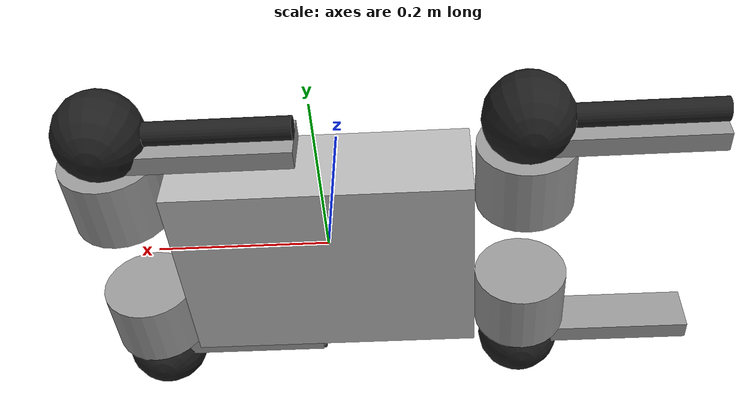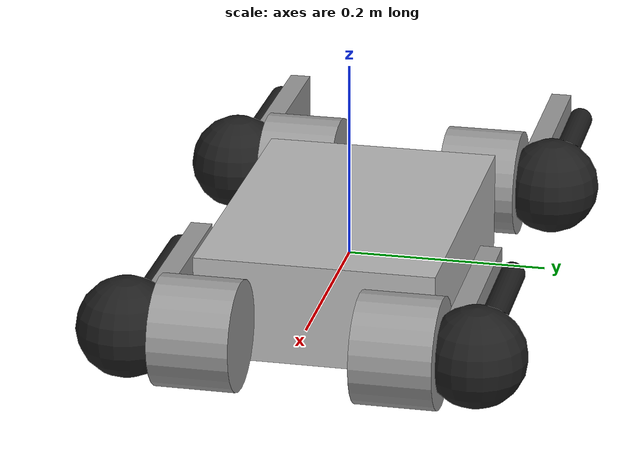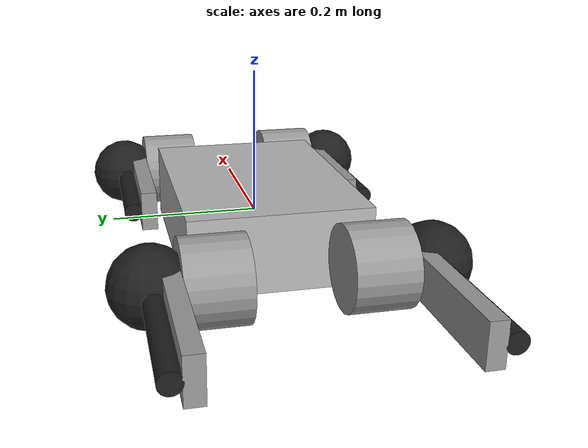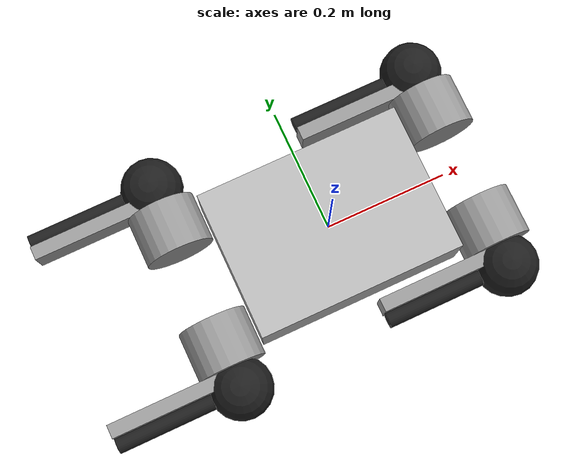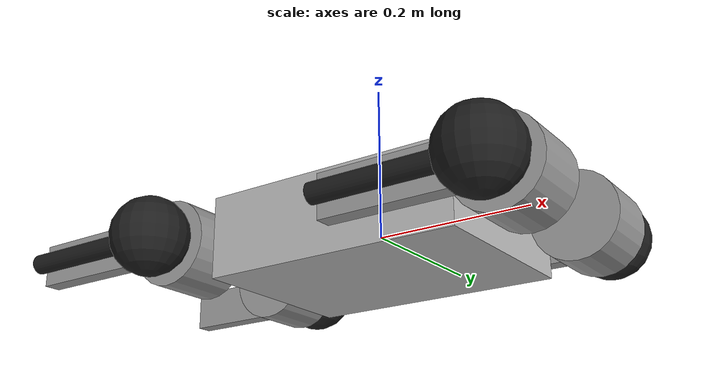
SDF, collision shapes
<sdf version='1.6'>
  <model name='spirit'>
    <link name='body'>
      <pose frame=''>0 0 0 0 -0 0</pose>
      <inertial>
        <pose frame=''>1e-06 0 -0 0 -0 0</pose>
        <mass>5.7501</mass>
        <inertia>
          <ixx>0.05</ixx>
          <ixy>0</ixy>
          <ixz>1.99997e-08</ixz>
          <iyy>0.1</iyy>
          <iyz>0</iyz>
          <izz>0.1</izz>
        </inertia>
      </inertial>
      <collision name='body_collision'>
        <pose frame=''>0 0 0 0 -0 0</pose>
        <geometry>
          <box>
            <size>0.335 0.24 0.104</size>
          </box>
        </geometry>
        <surface>
          <contact>
            <ode/>
          </contact>
          <friction>
            <ode/>
          </friction>
        </surface>
      </collision>
      <visual name='body_visual'>
        <pose frame=''>0.03 0 0 0 -0 0</pose>
        <geometry>
          <mesh>
            <scale>1 1 1</scale>
            <uri>model://spirit_description/meshes/Spirit40_Body_Mesh_transformed.stl</uri>
          </mesh>
        </geometry>
        <material>
          <script>
            <uri>__default__</uri>
            <name>__default__</name>
          </script>
        </material>
      </visual>
      <visual name='body_fixed_joint_lump__text_top_visual_1'>
        <pose frame=''>0.04 5.2e-05 -0.07 -1.57 0 0</pose>
        <geometry>
          <mesh>
            <scale>1.3 1 1.3</scale>
            <uri>model://spirit_description/meshes/Spirit40_CMU_Text_transformed.stl</uri>
          </mesh>
        </geometry>
      </visual>
      <gravity>1</gravity>
      <velocity_decay/>
      <gravity>1</gravity>
      <sensor name='imu_sensor' type='imu'>
        <always_on>1</always_on>
        <visualize>1</visualize>
        <topic>__default_topic_</topic>
        <plugin name='imu_plugin' filename='libgazebo_ros_imu_sensor.so'>
          <topicName>imu</topicName>
          <bodyName>body</bodyName>
          <updateRateHZ>500.0</updateRateHZ>
          <gaussianNoise>0.0</gaussianNoise>
          <xyzOffset>0 0 0</xyzOffset>
          <rpyOffset>0 0 0</rpyOffset>
          <frameName>body</frameName>
          <initialOrientationAsReference>1</initialOrientationAsReference>
        </plugin>
        <pose frame=''>0 0 0 0 -0 0</pose>
      </sensor>
    </link>
    <link name='hip2'>
      <pose frame=''>0.2263 -0.07 0 0 -0 0</pose>
      <inertial>
        <pose frame=''>0 0 0 0 -0 0</pose>
        <mass>0.575</mass>
        <inertia>
          <ixx>0.000669635</ixx>
          <ixy>0</ixy>
          <ixz>0</ixz>
          <iyy>0.000669635</iyy>
          <iyz>0</iyz>
          <izz>0.000869688</izz>
        </inertia>
      </inertial>
      <collision name='hip2_collision'>
        <pose frame=''>0 -0.028 0 1.5708 -0 0</pose>
        <geometry>
          <cylinder>
            <length>0.08</length>
            <radius>0.055</radius>
          </cylinder>
        </geometry>
        <surface>
          <contact>
            <ode/>
          </contact>
          <friction>
            <ode/>
          </friction>
        </surface>
      </collision>
      <visual name='hip2_visual'>
        <pose frame=''>0 0 0 -3.14159 -0 0</pose>
        <geometry>
          <mesh>
            <scale>1 1 1</scale>
            <uri>model://spirit_description/meshes/Spirit40_Hip_Module_transformed.stl</uri>
          </mesh>
        </geometry>
        <material>
          <script>
            <name>Gazebo/Gray</name>
            <uri>file://media/materials/scripts/gazebo.material</uri>
          </script>
        </material>
      </visual>
      <gravity>1</gravity>
      <velocity_decay/>
    </link>
    <joint name='10' type='revolute'>
      <child>hip2</child>
      <parent>body</parent>
      <axis>
        <xyz>1 0 0</xyz>
        <limit>
          <lower>-0.707</lower>
          <upper>0.707</upper>
          <effort>21</effort>
          <velocity>37.7</velocity>
        </limit>
        <dynamics>
          <damping>0</damping>
          <friction>0</friction>
          <spring_reference>0</spring_reference>
          <spring_stiffness>0</spring_stiffness>
        </dynamics>
        <use_parent_model_frame>0</use_parent_model_frame>
      </axis>
    </joint>
    <link name='upper2'>
      <pose frame=''>0.2263 -0.17098 0 0 -0 0</pose>
      <inertial>
        <pose frame=''>0 0 0 0 -0 0</pose>
        <mass>0.775</mass>
        <inertia>
          <ixx>5e-05</ixx>
          <ixy>0</ixy>
          <ixz>0</ixz>
          <iyy>0.001</iyy>
          <iyz>0</iyz>
          <izz>0.001</izz>
        </inertia>
      </inertial>
      <collision name='upper2_collision'>
        <pose frame=''>-0.103 0.022 0 0 -0 0</pose>
        <geometry>
          <box>
            <size>0.206 0.022 0.055</size>
          </box>
        </geometry>
        <surface>
          <contact>
            <ode/>
          </contact>
          <friction>
            <ode/>
          </friction>
        </surface>
      </collision>
      <visual name='upper2_visual'>
        <pose frame=''>0 0.02 0 -3.14159 -0 0</pose>
        <geometry>
          <mesh>
            <scale>1 1 1</scale>
            <uri>model://spirit_description/meshes/Spirit40_Upper_leg_transformed.stl</uri>
          </mesh>
        </geometry>
        <material>
          <script>
            <name>Gazebo/Gray</name>
            <uri>file://media/materials/scripts/gazebo.material</uri>
          </script>
        </material>
      </visual>
      <gravity>1</gravity>
      <velocity_decay/>
    </link>
    <joint name='4' type='revolute'>
      <child>upper2</child>
      <parent>hip2</parent>
      <axis>
        <xyz>0 -1 0</xyz>
        <limit>
          <lower>-1.57</lower>
          <upper>3.14</upper>
          <effort>21</effort>
          <velocity>37.7</velocity>
        </limit>
        <dynamics>
          <damping>0</damping>
          <friction>0</friction>
          <spring_reference>0</spring_reference>
          <spring_stiffness>0</spring_stiffness>
        </dynamics>
        <use_parent_model_frame>0</use_parent_model_frame>
      </axis>
    </joint>
    <link name='lower2'>
      <pose frame=''>0.0203 -0.17098 0 0 -0 0</pose>
      <inertial>
        <pose frame=''>0.034333 0 0 0 -0 0</pose>
        <mass>0.09</mass>
        <inertia>
          <ixx>3e-05</ixx>
          <ixy>0</ixy>
          <ixz>0</ixz>
          <iyy>0.00065545</iyy>
          <iyz>0</iyz>
          <izz>0.00065545</izz>
        </inertia>
      </inertial>
      <collision name='lower2_collision'>
        <pose frame=''>0.103 0 0 3.14159 1.57079 3.14159</pose>
        <geometry>
          <cylinder>
            <length>0.206</length>
            <radius>0.013</radius>
          </cylinder>
        </geometry>
        <surface>
          <contact>
            <ode/>
          </contact>
          <friction>
            <ode/>
          </friction>
        </surface>
      </collision>
      <collision name='lower2_fixed_joint_lump__toe2_collision_1'>
        <pose frame=''>0.206 0 0 0 -0 0</pose>
        <geometry>
          <sphere>
            <radius>0.05</radius>
          </sphere>
        </geometry>
        <surface>
          <bounce>
            <restitution_coefficient>0</restitution_coefficient>
            <threshold>1e+06</threshold>
          </bounce>
          <friction>
            <torsional>
              <coefficient>0.3</coefficient>
            </torsional>
            <ode>
              <mu>100</mu>
              <mu2>50</mu2>
            </ode>
            <bullet>
              <rolling_friction>0.3</rolling_friction>
              <friction2>50</friction2>
            </bullet>
          </friction>
          <contact>
            <bullet>
              <kp>30000</kp>
              <kd>1000</kd>
              <split_impulse>1</split_impulse>
              <split_impulse_penetration_threshold>-0.01</split_impulse_penetration_threshold>
            </bullet>
            <ode>
              <kp>30000</kp>
              <kd>1000</kd>
            </ode>
          </contact>
        </surface>
      </collision>
      <visual name='lower2_visual'>
        <pose frame=''>0 0 0 -3.14159 -0 0</pose>
        <geometry>
          <mesh>
            <scale>1 1 1</scale>
            <uri>model://spirit_description/meshes/Spirit40_Lower_Leg_transformed.stl</uri>
          </mesh>
        </geometry>
        <material>
          <script>
            <name>Gazebo/Black</name>
            <uri>file://media/materials/scripts/gazebo.material</uri>
          </script>
        </material>
      </visual>
      <visual name='lower2_fixed_joint_lump__toe2_visual_1'>
        <pose frame=''>0.206 0 0 0 -0 0</pose>
        <geometry>
          <sphere>
            <radius>0.05</radius>
          </sphere>
        </geometry>
        <material>
          <script>
            <name>Gazebo/DarkGray</name>
            <uri>file://media/materials/scripts/gazebo.material</uri>
          </script>
        </material>
      </visual>
      <velocity_decay/>
      <gravity>1</gravity>
      <velocity_decay/>
    </link>
    <joint name='5' type='revolute'>
      <child>lower2</child>
      <parent>upper2</parent>
      <axis>
        <xyz>0 1 0</xyz>
        <limit>
          <lower>-6.28</lower>
          <upper>6.28</upper>
          <effort>32</effort>
          <velocity>25.1</velocity>
        </limit>
        <dynamics>
          <damping>0</damping>
          <friction>0</friction>
          <spring_reference>0</spring_reference>
          <spring_stiffness>0</spring_stiffness>
        </dynamics>
        <use_parent_model_frame>0</use_parent_model_frame>
      </axis>
    </joint>
    <link name='hip3'>
      <pose frame=''>-0.2263 -0.07 0 0 -0 0</pose>
      <inertial>
        <pose frame=''>0 0 0 0 -0 0</pose>
        <mass>0.575</mass>
        <inertia>
          <ixx>0.000669635</ixx>
          <ixy>0</ixy>
          <ixz>0</ixz>
          <iyy>0.000669635</iyy>
          <iyz>0</iyz>
          <izz>0.000869688</izz>
        </inertia>
      </inertial>
      <collision name='hip3_collision'>
        <pose frame=''>0 -0.028 0 1.5708 -0 0</pose>
        <geometry>
          <cylinder>
            <length>0.08</length>
            <radius>0.055</radius>
          </cylinder>
        </geometry>
        <surface>
          <contact>
            <ode/>
          </contact>
          <friction>
            <ode/>
          </friction>
        </surface>
      </collision>
      <visual name='hip3_visual'>
        <pose frame=''>0 0 0 0 -0 3.14159</pose>
        <geometry>
          <mesh>
            <scale>1 1 1</scale>
            <uri>model://spirit_description/meshes/Spirit40_Hip_Module_transformed.stl</uri>
          </mesh>
        </geometry>
        <material>
          <script>
            <name>Gazebo/Gray</name>
            <uri>file://media/materials/scripts/gazebo.material</uri>
          </script>
        </material>
      </visual>
      <gravity>1</gravity>
      <velocity_decay/>
    </link>
    <joint name='11' type='revolute'>
      <child>hip3</child>
      <parent>body</parent>
      <axis>
        <xyz>1 0 0</xyz>
        <limit>
          <lower>-0.707</lower>
          <upper>0.707</upper>
          <effort>21</effort>
          <velocity>37.7</velocity>
        </limit>
        <dynamics>
          <damping>0</damping>
          <friction>0</friction>
          <spring_reference>0</spring_reference>
          <spring_stiffness>0</spring_stiffness>
        </dynamics>
        <use_parent_model_frame>0</use_parent_model_frame>
      </axis>
    </joint>
    <link name='upper3'>
      <pose frame=''>-0.2263 -0.17098 0 0 -0 0</pose>
      <inertial>
        <pose frame=''>0 0 0 0 -0 0</pose>
        <mass>0.775</mass>
        <inertia>
          <ixx>5e-05</ixx>
          <ixy>0</ixy>
          <ixz>0</ixz>
          <iyy>0.001</iyy>
          <iyz>0</iyz>
          <izz>0.001</izz>
        </inertia>
      </inertial>
      <collision name='upper3_collision'>
        <pose frame=''>-0.103 0.022 0 0 -0 0</pose>
        <geometry>
          <box>
            <size>0.206 0.022 0.055</size>
          </box>
        </geometry>
        <surface>
          <contact>
            <ode/>
          </contact>
          <friction>
            <ode/>
          </friction>
        </surface>
      </collision>
      <visual name='upper3_visual'>
        <pose frame=''>0 0.02 0 -3.14159 -0 0</pose>
        <geometry>
          <mesh>
            <scale>1 1 1</scale>
            <uri>model://spirit_description/meshes/Spirit40_Upper_leg_transformed.stl</uri>
          </mesh>
        </geometry>
        <material>
          <script>
            <name>Gazebo/Gray</name>
            <uri>file://media/materials/scripts/gazebo.material</uri>
          </script>
        </material>
      </visual>
      <gravity>1</gravity>
      <velocity_decay/>
    </link>
    <joint name='6' type='revolute'>
      <child>upper3</child>
      <parent>hip3</parent>
      <axis>
        <xyz>0 -1 0</xyz>
        <limit>
          <lower>-3.14</lower>
          <upper>1.57</upper>
          <effort>21</effort>
          <velocity>37.7</velocity>
        </limit>
        <dynamics>
          <damping>0</damping>
          <friction>0</friction>
          <spring_reference>0</spring_reference>
          <spring_stiffness>0</spring_stiffness>
        </dynamics>
        <use_parent_model_frame>0</use_parent_model_frame>
      </axis>
    </joint>
    <link name='lower3'>
      <pose frame=''>-0.4323 -0.17098 0 0 -0 0</pose>
      <inertial>
        <pose frame=''>0.034333 0 0 0 -0 0</pose>
        <mass>0.09</mass>
        <inertia>
          <ixx>3e-05</ixx>
          <ixy>0</ixy>
          <ixz>0</ixz>
          <iyy>0.00065545</iyy>
          <iyz>0</iyz>
          <izz>0.00065545</izz>
        </inertia>
      </inertial>
      <collision name='lower3_collision'>
        <pose frame=''>0.103 0 0 3.14159 1.57079 3.14159</pose>
        <geometry>
          <cylinder>
            <length>0.206</length>
            <radius>0.013</radius>
          </cylinder>
        </geometry>
        <surface>
          <contact>
            <ode/>
          </contact>
          <friction>
            <ode/>
          </friction>
        </surface>
      </collision>
      <collision name='lower3_fixed_joint_lump__toe3_collision_1'>
        <pose frame=''>0.206 0 0 0 -0 0</pose>
        <geometry>
          <sphere>
            <radius>0.05</radius>
          </sphere>
        </geometry>
        <surface>
          <bounce>
            <restitution_coefficient>0</restitution_coefficient>
            <threshold>1e+06</threshold>
          </bounce>
          <friction>
            <torsional>
              <coefficient>0.3</coefficient>
            </torsional>
            <ode>
              <mu>100</mu>
              <mu2>50</mu2>
            </ode>
            <bullet>
              <rolling_friction>0.3</rolling_friction>
              <friction2>50</friction2>
            </bullet>
          </friction>
          <contact>
            <bullet>
              <kp>30000</kp>
              <kd>1000</kd>
              <split_impulse>1</split_impulse>
              <split_impulse_penetration_threshold>-0.01</split_impulse_penetration_threshold>
            </bullet>
            <ode>
              <kp>30000</kp>
              <kd>1000</kd>
            </ode>
          </contact>
        </surface>
      </collision>
      <visual name='lower3_visual'>
        <pose frame=''>0 0 0 -3.14159 -0 0</pose>
        <geometry>
          <mesh>
            <scale>1 1 1</scale>
            <uri>model://spirit_description/meshes/Spirit40_Lower_Leg_transformed.stl</uri>
          </mesh>
        </geometry>
        <material>
          <script>
            <name>Gazebo/Black</name>
            <uri>file://media/materials/scripts/gazebo.material</uri>
          </script>
        </material>
      </visual>
      <visual name='lower3_fixed_joint_lump__toe3_visual_1'>
        <pose frame=''>0.206 0 0 0 -0 0</pose>
        <geometry>
          <sphere>
            <radius>0.05</radius>
          </sphere>
        </geometry>
        <material>
          <script>
            <name>Gazebo/DarkGray</name>
            <uri>file://media/materials/scripts/gazebo.material</uri>
          </script>
        </material>
      </visual>
      <velocity_decay/>
      <gravity>1</gravity>
      <velocity_decay/>
    </link>
    <joint name='7' type='revolute'>
      <child>lower3</child>
      <parent>upper3</parent>
      <axis>
        <xyz>0 1 0</xyz>
        <limit>
          <lower>-6.28</lower>
          <upper>6.28</upper>
          <effort>32</effort>
          <velocity>25.1</velocity>
        </limit>
        <dynamics>
          <damping>0</damping>
          <friction>0</friction>
          <spring_reference>0</spring_reference>
          <spring_stiffness>0</spring_stiffness>
        </dynamics>
        <use_parent_model_frame>0</use_parent_model_frame>
      </axis>
    </joint>
    <link name='hip0'>
      <pose frame=''>0.2263 0.07 0 0 -0 0</pose>
      <inertial>
        <pose frame=''>0 0 0 0 -0 0</pose>
        <mass>0.575</mass>
        <inertia>
          <ixx>0.000669635</ixx>
          <ixy>0</ixy>
          <ixz>0</ixz>
          <iyy>0.000669635</iyy>
          <iyz>0</iyz>
          <izz>0.000869688</izz>
        </inertia>
      </inertial>
      <collision name='hip0_collision'>
        <pose frame=''>0 0.028 0 1.5708 -0 0</pose>
        <geometry>
          <cylinder>
            <length>0.08</length>
            <radius>0.055</radius>
          </cylinder>
        </geometry>
        <surface>
          <contact>
            <ode/>
          </contact>
          <friction>
            <ode/>
          </friction>
        </surface>
      </collision>
      <visual name='hip0_visual'>
        <pose frame=''>0 0 0 0 -0 0</pose>
        <geometry>
          <mesh>
            <scale>1 1 1</scale>
            <uri>model://spirit_description/meshes/Spirit40_Hip_Module_transformed.stl</uri>
          </mesh>
        </geometry>
        <material>
          <script>
            <name>Gazebo/Gray</name>
            <uri>file://media/materials/scripts/gazebo.material</uri>
          </script>
        </material>
      </visual>
      <gravity>1</gravity>
      <velocity_decay/>
    </link>
    <joint name='8' type='revolute'>
      <child>hip0</child>
      <parent>body</parent>
      <axis>
        <xyz>1 0 0</xyz>
        <limit>
          <lower>-0.707</lower>
          <upper>0.707</upper>
          <effort>21</effort>
          <velocity>37.7</velocity>
        </limit>
        <dynamics>
          <damping>0</damping>
          <friction>0</friction>
          <spring_reference>0</spring_reference>
          <spring_stiffness>0</spring_stiffness>
        </dynamics>
        <use_parent_model_frame>0</use_parent_model_frame>
      </axis>
    </joint>
    <link name='upper0'>
      <pose frame=''>0.2263 0.17098 0 0 -0 0</pose>
      <inertial>
        <pose frame=''>0 0 0 0 -0 0</pose>
        <mass>0.775</mass>
        <inertia>
          <ixx>5e-05</ixx>
          <ixy>0</ixy>
          <ixz>0</ixz>
          <iyy>0.001</iyy>
          <iyz>0</iyz>
          <izz>0.001</izz>
        </inertia>
      </inertial>
      <collision name='upper0_collision'>
        <pose frame=''>-0.103 -0.022 0 0 -0 0</pose>
        <geometry>
          <box>
            <size>0.206 0.022 0.055</size>
          </box>
        </geometry>
        <surface>
          <contact>
            <ode/>
          </contact>
          <friction>
            <ode/>
          </friction>
        </surface>
      </collision>
      <visual name='upper0_visual'>
        <pose frame=''>0 -0.02 0 0 -0 0</pose>
        <geometry>
          <mesh>
            <scale>1 1 1</scale>
            <uri>model://spirit_description/meshes/Spirit40_Upper_leg_transformed.stl</uri>
          </mesh>
        </geometry>
        <material>
          <script>
            <name>Gazebo/Gray</name>
            <uri>file://media/materials/scripts/gazebo.material</uri>
          </script>
        </material>
      </visual>
      <gravity>1</gravity>
      <velocity_decay/>
    </link>
    <joint name='0' type='revolute'>
      <child>upper0</child>
      <parent>hip0</parent>
      <axis>
        <xyz>0 -1 0</xyz>
        <limit>
          <lower>-1.57</lower>
          <upper>3.14</upper>
          <effort>21</effort>
          <velocity>37.7</velocity>
        </limit>
        <dynamics>
          <damping>0</damping>
          <friction>0</friction>
          <spring_reference>0</spring_reference>
          <spring_stiffness>0</spring_stiffness>
        </dynamics>
        <use_parent_model_frame>0</use_parent_model_frame>
      </axis>
    </joint>
    <link name='lower0'>
      <pose frame=''>0.0203 0.17098 0 0 -0 0</pose>
      <inertial>
        <pose frame=''>0.034333 0 0 0 -0 0</pose>
        <mass>0.09</mass>
        <inertia>
          <ixx>3e-05</ixx>
          <ixy>0</ixy>
          <ixz>0</ixz>
          <iyy>0.00065545</iyy>
          <iyz>0</iyz>
          <izz>0.00065545</izz>
        </inertia>
      </inertial>
      <collision name='lower0_collision'>
        <pose frame=''>0.103 0 0 3.14159 1.57079 3.14159</pose>
        <geometry>
          <cylinder>
            <length>0.206</length>
            <radius>0.013</radius>
          </cylinder>
        </geometry>
        <surface>
          <contact>
            <ode/>
          </contact>
          <friction>
            <ode/>
          </friction>
        </surface>
      </collision>
      <collision name='lower0_fixed_joint_lump__toe0_collision_1'>
        <pose frame=''>0.206 0 0 0 -0 0</pose>
        <geometry>
          <sphere>
            <radius>0.05</radius>
          </sphere>
        </geometry>
        <surface>
          <bounce>
            <restitution_coefficient>0</restitution_coefficient>
            <threshold>1e+06</threshold>
          </bounce>
          <friction>
            <torsional>
              <coefficient>0.3</coefficient>
            </torsional>
            <ode>
              <mu>100</mu>
              <mu2>50</mu2>
            </ode>
            <bullet>
              <rolling_friction>0.3</rolling_friction>
              <friction2>50</friction2>
            </bullet>
          </friction>
          <contact>
            <bullet>
              <kp>30000</kp>
              <kd>1000</kd>
              <split_impulse>1</split_impulse>
              <split_impulse_penetration_threshold>-0.01</split_impulse_penetration_threshold>
            </bullet>
            <ode>
              <kp>30000</kp>
              <kd>1000</kd>
            </ode>
          </contact>
        </surface>
      </collision>
      <visual name='lower0_visual'>
        <pose frame=''>0 0 0 0 -0 0</pose>
        <geometry>
          <mesh>
            <scale>1 1 1</scale>
            <uri>model://spirit_description/meshes/Spirit40_Lower_Leg_transformed.stl</uri>
          </mesh>
        </geometry>
        <material>
          <script>
            <name>Gazebo/Black</name>
            <uri>file://media/materials/scripts/gazebo.material</uri>
          </script>
        </material>
      </visual>
      <visual name='lower0_fixed_joint_lump__toe0_visual_1'>
        <pose frame=''>0.206 0 0 0 -0 0</pose>
        <geometry>
          <sphere>
            <radius>0.05</radius>
          </sphere>
        </geometry>
        <material>
          <script>
            <name>Gazebo/DarkGray</name>
            <uri>file://media/materials/scripts/gazebo.material</uri>
          </script>
        </material>
      </visual>
      <velocity_decay/>
      <gravity>1</gravity>
      <velocity_decay/>
    </link>
    <joint name='1' type='revolute'>
      <child>lower0</child>
      <parent>upper0</parent>
      <axis>
        <xyz>0 1 0</xyz>
        <limit>
          <lower>-6.28</lower>
          <upper>6.28</upper>
          <effort>32</effort>
          <velocity>25.1</velocity>
        </limit>
        <dynamics>
          <damping>0</damping>
          <friction>0</friction>
          <spring_reference>0</spring_reference>
          <spring_stiffness>0</spring_stiffness>
        </dynamics>
        <use_parent_model_frame>0</use_parent_model_frame>
      </axis>
    </joint>
    <link name='hip1'>
      <pose frame=''>-0.2263 0.07 0 0 -0 0</pose>
      <inertial>
        <pose frame=''>0 0 0 0 -0 0</pose>
        <mass>0.575</mass>
        <inertia>
          <ixx>0.000669635</ixx>
          <ixy>0</ixy>
          <ixz>0</ixz>
          <iyy>0.000669635</iyy>
          <iyz>0</iyz>
          <izz>0.000869688</izz>
        </inertia>
      </inertial>
      <collision name='hip1_collision'>
        <pose frame=''>0 0.028 0 1.5708 -0 0</pose>
        <geometry>
          <cylinder>
            <length>0.08</length>
            <radius>0.055</radius>
          </cylinder>
        </geometry>
        <surface>
          <contact>
            <ode/>
          </contact>
          <friction>
            <ode/>
          </friction>
        </surface>
      </collision>
      <visual name='hip1_visual'>
        <pose frame=''>0 0 0 3.14159 -0 3.14159</pose>
        <geometry>
          <mesh>
            <scale>1 1 1</scale>
            <uri>model://spirit_description/meshes/Spirit40_Hip_Module_transformed.stl</uri>
          </mesh>
        </geometry>
        <material>
          <script>
            <name>Gazebo/Gray</name>
            <uri>file://media/materials/scripts/gazebo.material</uri>
          </script>
        </material>
      </visual>
      <gravity>1</gravity>
      <velocity_decay/>
    </link>
    <joint name='9' type='revolute'>
      <child>hip1</child>
      <parent>body</parent>
      <axis>
        <xyz>1 0 0</xyz>
        <limit>
          <lower>-0.707</lower>
          <upper>0.707</upper>
          <effort>21</effort>
          <velocity>37.7</velocity>
        </limit>
        <dynamics>
          <damping>0</damping>
          <friction>0</friction>
          <spring_reference>0</spring_reference>
          <spring_stiffness>0</spring_stiffness>
        </dynamics>
        <use_parent_model_frame>0</use_parent_model_frame>
      </axis>
    </joint>
    <link name='upper1'>
      <pose frame=''>-0.2263 0.17098 0 0 -0 0</pose>
      <inertial>
        <pose frame=''>0 0 0 0 -0 0</pose>
        <mass>0.775</mass>
        <inertia>
          <ixx>5e-05</ixx>
          <ixy>0</ixy>
          <ixz>0</ixz>
          <iyy>0.001</iyy>
          <iyz>0</iyz>
          <izz>0.001</izz>
        </inertia>
      </inertial>
      <collision name='upper1_collision'>
        <pose frame=''>-0.103 -0.022 0 0 -0 0</pose>
        <geometry>
          <box>
            <size>0.206 0.022 0.055</size>
          </box>
        </geometry>
        <surface>
          <contact>
            <ode/>
          </contact>
          <friction>
            <ode/>
          </friction>
        </surface>
      </collision>
      <visual name='upper1_visual'>
        <pose frame=''>0 -0.02 0 0 -0 0</pose>
        <geometry>
          <mesh>
            <scale>1 1 1</scale>
            <uri>model://spirit_description/meshes/Spirit40_Upper_leg_transformed.stl</uri>
          </mesh>
        </geometry>
        <material>
          <script>
            <name>Gazebo/Gray</name>
            <uri>file://media/materials/scripts/gazebo.material</uri>
          </script>
        </material>
      </visual>
      <gravity>1</gravity>
      <velocity_decay/>
    </link>
    <joint name='2' type='revolute'>
      <child>upper1</child>
      <parent>hip1</parent>
      <axis>
        <xyz>0 -1 0</xyz>
        <limit>
          <lower>-3.14</lower>
          <upper>1.57</upper>
          <effort>21</effort>
          <velocity>37.7</velocity>
        </limit>
        <dynamics>
          <damping>0</damping>
          <friction>0</friction>
          <spring_reference>0</spring_reference>
          <spring_stiffness>0</spring_stiffness>
        </dynamics>
        <use_parent_model_frame>0</use_parent_model_frame>
      </axis>
    </joint>
    <link name='lower1'>
      <pose frame=''>-0.4323 0.17098 0 0 -0 0</pose>
      <inertial>
        <pose frame=''>0.034333 0 0 0 -0 0</pose>
        <mass>0.09</mass>
        <inertia>
          <ixx>3e-05</ixx>
          <ixy>0</ixy>
          <ixz>0</ixz>
          <iyy>0.00065545</iyy>
          <iyz>0</iyz>
          <izz>0.00065545</izz>
        </inertia>
      </inertial>
      <collision name='lower1_collision'>
        <pose frame=''>0.103 0 0 3.14159 1.57079 3.14159</pose>
        <geometry>
          <cylinder>
            <length>0.206</length>
            <radius>0.013</radius>
          </cylinder>
        </geometry>
        <surface>
          <contact>
            <ode/>
          </contact>
          <friction>
            <ode/>
          </friction>
        </surface>
      </collision>
      <collision name='lower1_fixed_joint_lump__toe1_collision_1'>
        <pose frame=''>0.206 0 0 0 -0 0</pose>
        <geometry>
          <sphere>
            <radius>0.05</radius>
          </sphere>
        </geometry>
        <surface>
          <bounce>
            <restitution_coefficient>0</restitution_coefficient>
            <threshold>1e+06</threshold>
          </bounce>
          <friction>
            <torsional>
              <coefficient>0.3</coefficient>
            </torsional>
            <ode>
              <mu>100</mu>
              <mu2>50</mu2>
            </ode>
            <bullet>
              <rolling_friction>0.3</rolling_friction>
              <friction2>50</friction2>
            </bullet>
          </friction>
          <contact>
            <bullet>
              <kp>30000</kp>
              <kd>1000</kd>
              <split_impulse>1</split_impulse>
              <split_impulse_penetration_threshold>-0.01</split_impulse_penetration_threshold>
            </bullet>
            <ode>
              <kp>30000</kp>
              <kd>1000</kd>
            </ode>
          </contact>
        </surface>
      </collision>
      <visual name='lower1_visual'>
        <pose frame=''>0 0 0 0 -0 0</pose>
        <geometry>
          <mesh>
            <scale>1 1 1</scale>
            <uri>model://spirit_description/meshes/Spirit40_Lower_Leg_transformed.stl</uri>
          </mesh>
        </geometry>
        <material>
          <script>
            <name>Gazebo/Black</name>
            <uri>file://media/materials/scripts/gazebo.material</uri>
          </script>
        </material>
      </visual>
      <visual name='lower1_fixed_joint_lump__toe1_visual_1'>
        <pose frame=''>0.206 0 0 0 -0 0</pose>
        <geometry>
          <sphere>
            <radius>0.05</radius>
          </sphere>
        </geometry>
        <material>
          <script>
            <name>Gazebo/DarkGray</name>
            <uri>file://media/materials/scripts/gazebo.material</uri>
          </script>
        </material>
      </visual>
      <velocity_decay/>
      <gravity>1</gravity>
      <velocity_decay/>
    </link>
    <joint name='3' type='revolute'>
      <child>lower1</child>
      <parent>upper1</parent>
      <axis>
        <xyz>0 1 0</xyz>
        <limit>
          <lower>-6.28</lower>
          <upper>6.28</upper>
          <effort>32</effort>
          <velocity>25.1</velocity>
        </limit>
        <dynamics>
          <damping>0</damping>
          <friction>0</friction>
          <spring_reference>0</spring_reference>
          <spring_stiffness>0</spring_stiffness>
        </dynamics>
        <use_parent_model_frame>0</use_parent_model_frame>
      </axis>
    </joint>
  </model>
</sdf>
